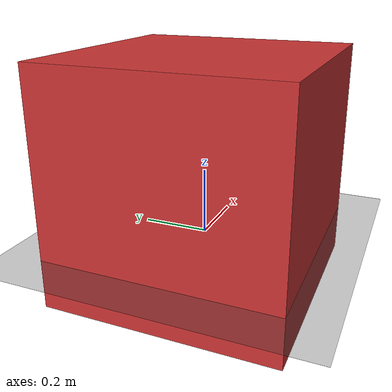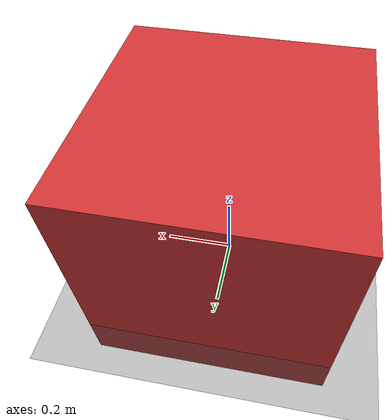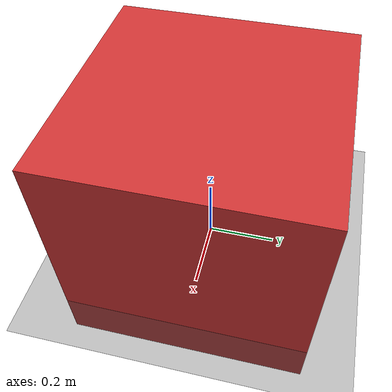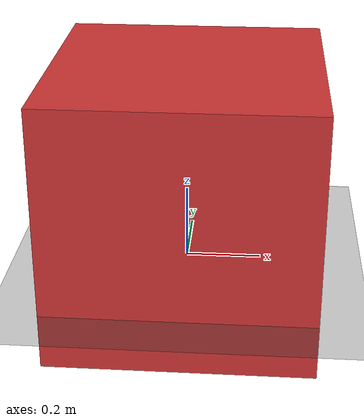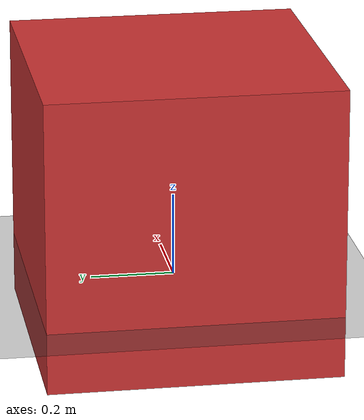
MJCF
<mujoco model="test_box_scene">
  <option timestep="0.002" gravity="0 0 -9.81"/>

  <default>
    <geom rgba="0.5 0.5 0.5 1"/>
  </default>

  <asset>
    <texture type="skybox" builtin="gradient" rgb1="0.4 0.6 0.8" rgb2="0.9 0.9 1" width="128" height="256"/>
    <!-- ground material removed -->
  </asset>

  <worldbody>
    <geom name="ground" type="plane" size="5 5 0.1" rgba="0.2 0.2 0.2 1"/>
    <body name="test_box" pos="0 0 0.2">
      <freejoint/>
      <geom type="box" size="0.35 0.35 0.35" rgba="0.8 0.2 0.2 1"/>
    </body>
  </worldbody>
</mujoco>
